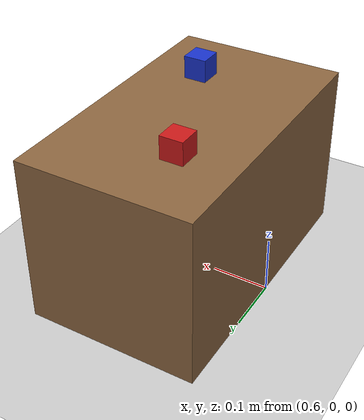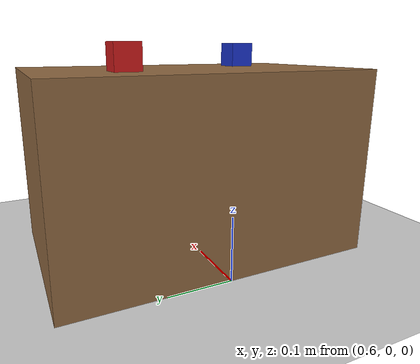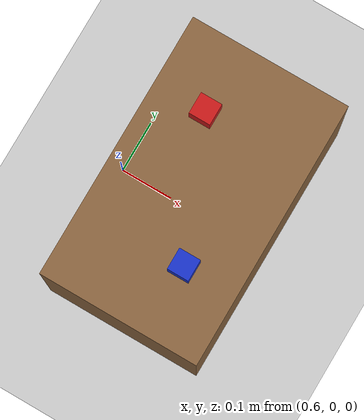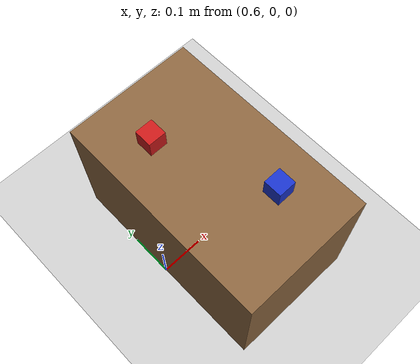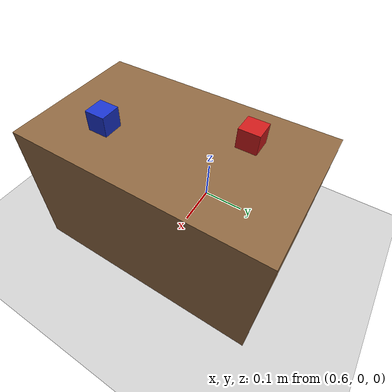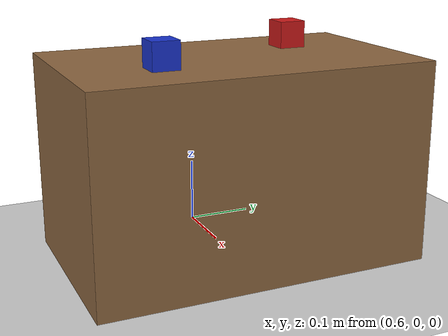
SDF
<?xml version="1.0"?>
<!-- Gazebo Classic test world: ground, light, a table in reach with two target cubes.
     Arm base_link sits on the 0.40 m pedestal at the origin; +x is the arm's forward direction. -->
<sdf version="1.6">
  <world name="arm_test">
    <include><uri>model://sun</uri></include>
    <include><uri>model://ground_plane</uri></include>

    <model name="table">
      <static>true</static>
      <pose>0.75 0 0.15 0 0 0</pose>
      <link name="link">
        <collision name="collision"><geometry><box><size>0.30 0.50 0.30</size></box></geometry></collision>
        <visual name="visual">
          <geometry><box><size>0.30 0.50 0.30</size></box></geometry>
          <material><ambient>0.55 0.40 0.25 1</ambient><diffuse>0.55 0.40 0.25 1</diffuse></material>
        </visual>
      </link>
    </model>

    <model name="target_red">
      <pose>0.70 0.12 0.32 0 0 0</pose>
      <link name="link">
        <inertial><mass>0.05</mass><inertia><ixx>1.3e-5</ixx><iyy>1.3e-5</iyy><izz>1.3e-5</izz><ixy>0</ixy><ixz>0</ixz><iyz>0</iyz></inertia></inertial>
        <collision name="collision"><geometry><box><size>0.04 0.04 0.04</size></box></geometry></collision>
        <visual name="visual">
          <geometry><box><size>0.04 0.04 0.04</size></box></geometry>
          <material><ambient>0.8 0.1 0.1 1</ambient><diffuse>0.8 0.1 0.1 1</diffuse></material>
        </visual>
      </link>
    </model>

    <model name="target_blue">
      <pose>0.80 -0.12 0.32 0 0 0</pose>
      <link name="link">
        <inertial><mass>0.05</mass><inertia><ixx>1.3e-5</ixx><iyy>1.3e-5</iyy><izz>1.3e-5</izz><ixy>0</ixy><ixz>0</ixz><iyz>0</iyz></inertia></inertial>
        <collision name="collision"><geometry><box><size>0.04 0.04 0.04</size></box></geometry></collision>
        <visual name="visual">
          <geometry><box><size>0.04 0.04 0.04</size></box></geometry>
          <material><ambient>0.1 0.2 0.8 1</ambient><diffuse>0.1 0.2 0.8 1</diffuse></material>
        </visual>
      </link>
    </model>
  </world>
</sdf>
